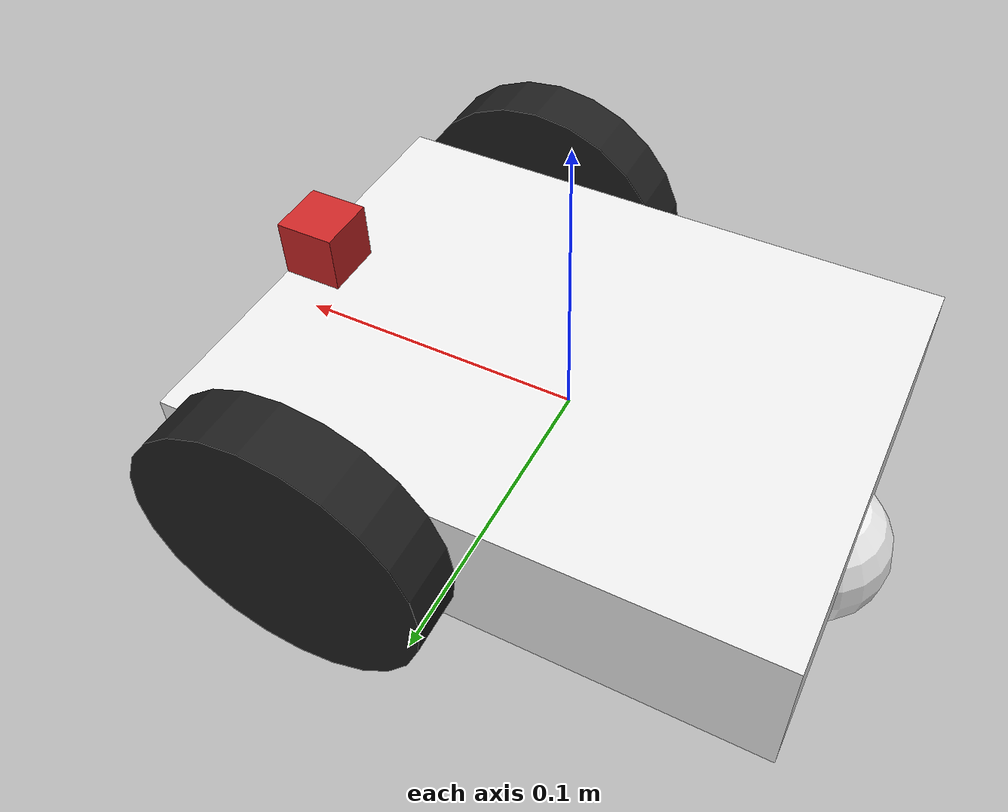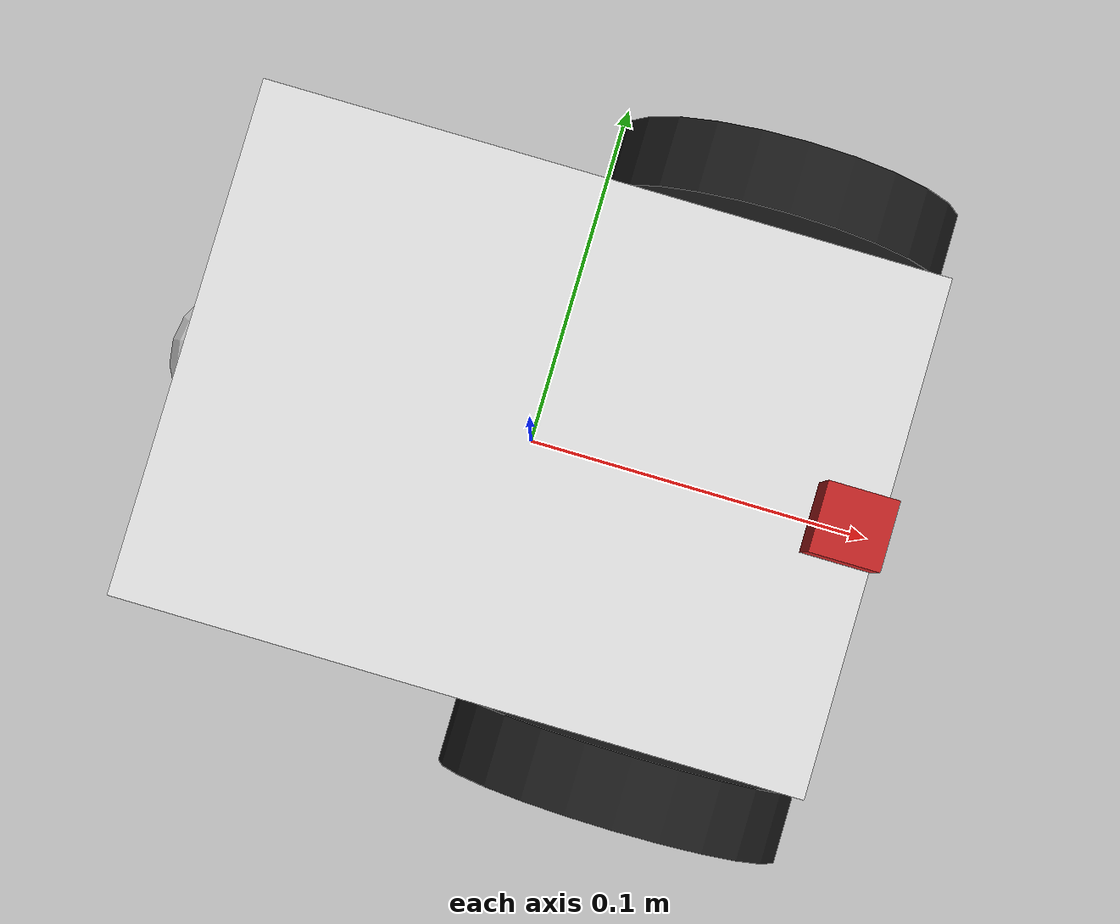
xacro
<?xml version="1.0"?>

<robot name="diffdrive" xmlns:xacro="http://www.ros.org/wiki/xacro">

  <!-- include gazebo plugins -->
  <xacro:include filename="$(find homework5)/urdf/diffdrive.gazebo" />

  <xacro:property name="base_width" value="0.15" />
  <xacro:property name="base_length" value="0.2" />
  <xacro:property name="base_height" value="0.05" />
  <xacro:property name="wheel_radius" value="0.05" />
  <xacro:property name="wheel_width" value="0.02" />
  <xacro:property name="wheel_gap" value="0.0" />
  <xacro:property name="wheel_setback" value="0.05" />
  <xacro:property name="lidar_width" value="0.02" />
  <xacro:property name="lidar_length" value="0.02" />
  <xacro:property name="lidar_height" value="0.02" />
  <xacro:property name="lidar_setback" value="0.0" />

  <!--~~~~~~~~~~~~~~~~~~~~~~~~ ~ ROBOT BASE ~ ~~~~~~~~~~~~~~~~~~~~~~~~~~~~~~-->

  <!-- Make a box for robot base -->

  <gazebo reference="base_link">
    <material>Gazebo/White</material>
  </gazebo>
  <link name="base_link">

  	<!-- Draw imaginary box around the robot for collision detection -->
    <collision>
      <origin xyz="0 0 0.0" rpy="0 0 0"/>
      <geometry>
       <box size="${base_length} ${base_width} ${base_height}"/>
      </geometry>
    </collision>

    <!-- Describe how to draw the box in 3d -->
    <visual>
      <origin xyz="0 0 0.0" rpy="0 0 0"/>
      <geometry>
	       <box size="${base_length} ${base_width} ${base_height}"/>
      </geometry>

    </visual>

    <collision name='caster_collision'>
      <origin xyz="${-base_length/2 + wheel_radius/4} 0 ${-wheel_radius/2}" rpy="0 0 0"/>
      <geometry>
          <sphere radius="${wheel_radius/2}"/>
      </geometry>

      <surface>
        <friction>
          <ode>
            <mu>0</mu>
            <mu2>0</mu2>
            <slip1>1.0</slip1>
            <slip2>1.0</slip2>
          </ode>
        </friction>
      </surface>
    </collision>

    <visual name='caster_visual'>
      <origin xyz="${-base_length/2 + wheel_radius/4} 0 ${-wheel_radius/2}" rpy="0 0 0"/>
      <geometry>
        <sphere radius="${wheel_radius/2}"/>
      </geometry>
    </visual>

    <inertial>
      <mass value="0.1" />  <!-- kilograms -->
      <origin xyz="0 0 0" rpy="0 0 0"/>
      <inertia ixx="0.00354" ixy="0" ixz="0" iyy="0.005208" iyz="0" izz="0.00208"/>
    </inertial>

  </link>

  <link name="left_link">
      <visual>
        <geometry>
          <cylinder length="${wheel_width}" radius="${wheel_radius}"/>
        </geometry>
        <origin rpy="${pi/2} 0 0" xyz="0 0 0"/>
      </visual>

      <collision>
        <geometry>
          <cylinder length="${wheel_width}" radius="${wheel_radius}"/>
        </geometry>
        <origin rpy="${pi/2} 0 0" xyz="0 0 0"/>

      </collision>

      <inertial>
        <mass value=".2" />
        <origin rpy="${pi/2} 0 0" xyz="0 0 0"/>
        <inertia ixx="0.00032916" ixy="0" ixz="0" iyy="0.00032916" iyz="0" izz="0.000625"/>
      </inertial>
    </link>

    <link name="right_link">
        <visual>
          <geometry>
            <cylinder length="${wheel_width}" radius="${wheel_radius}"/>
          </geometry>
          <origin rpy="${pi/2} 0 0" xyz="0 0 0"/>
        </visual>

        <collision>
          <geometry>
            <cylinder length="${wheel_width}" radius="${wheel_radius}"/>
          </geometry>
          <origin rpy="${pi/2} 0 0" xyz="0 0 0"/>

        </collision>

        <inertial>
          <mass value=".2" />
          <origin rpy="${pi/2} 0 0" xyz="0 0 0"/>
          <inertia ixx="0.00032916" ixy="0" ixz="0" iyy="0.00032916" iyz="0" izz="0.000625"/>
        </inertial>
      </link>

  <!--~~~~~~~~~~~~~~~~~~~~~~~ ~ Lidar ~ ~~~~~~~~~~~~~~~~~~~~~~~~~~~~~-->

  <gazebo reference="laser_link">
    <material>Gazebo/Orange</material>
  </gazebo>
  <link name="laser_link">

    <visual>
      <origin xyz="0 0 0" rpy="0 0 0"/>
      <geometry>
	       <box size="${lidar_length} ${lidar_width} ${lidar_height}"/>
      </geometry>
      <material name="red"/>
    </visual>

    <inertial>
      <mass value="1e-6" />
      <origin xyz="0 0 0" rpy="0 0 0"/>
      <inertia ixx="1e-6" ixy="0" ixz="0" iyy="1e-6" iyz="0" izz="1e-6" />
    </inertial>
  </link>

  <joint name="joint1" type="fixed">      <!-- Fused connection? (using continuous tilts view)-->
    <parent link="base_link"/>            <!--      robot link = parent     -->
    <child link="laser_link"/>     <!-- forward camera link = child  -->
    <origin xyz="${base_length/2 - lidar_length/2 - lidar_setback} 0 ${lidar_height/2 + base_height/2}" rpy="0 0 0"/>   <!-- where child is relative to parent -->
    <axis xyz="0 0 0"/>                   <!-- ...describes the axis of rotation? -->
  </joint>

  <joint name="left_joint" type="continuous">
      <parent link="base_link"/>
      <child link="left_link"/>
      <origin rpy="0 0 0" xyz="${base_length/2 - wheel_setback} ${base_width/2 + wheel_width/2 + wheel_gap} 0.0"/>
      <axis xyz="0 1 0"/>
      <dynamics damping="0" friction="0" spring_stiffness="1" />
  </joint>

  <joint name="right_joint" type="continuous">
      <parent link="base_link"/>
      <child link="right_link"/>
      <origin rpy="0 0 0" xyz="${base_length/2 - wheel_setback} ${-base_width/2 - wheel_width/2 - wheel_gap} 0.0"/>
      <axis xyz="0 1 0"/>
      <dynamics damping="0" friction="0" spring_stiffness="0" />
  </joint>

</robot>
